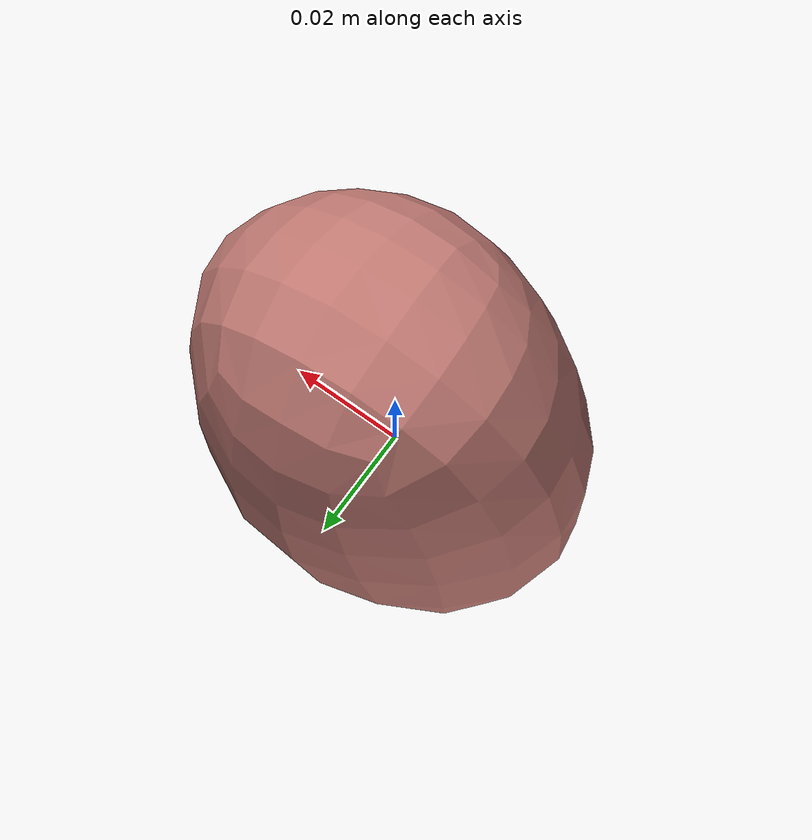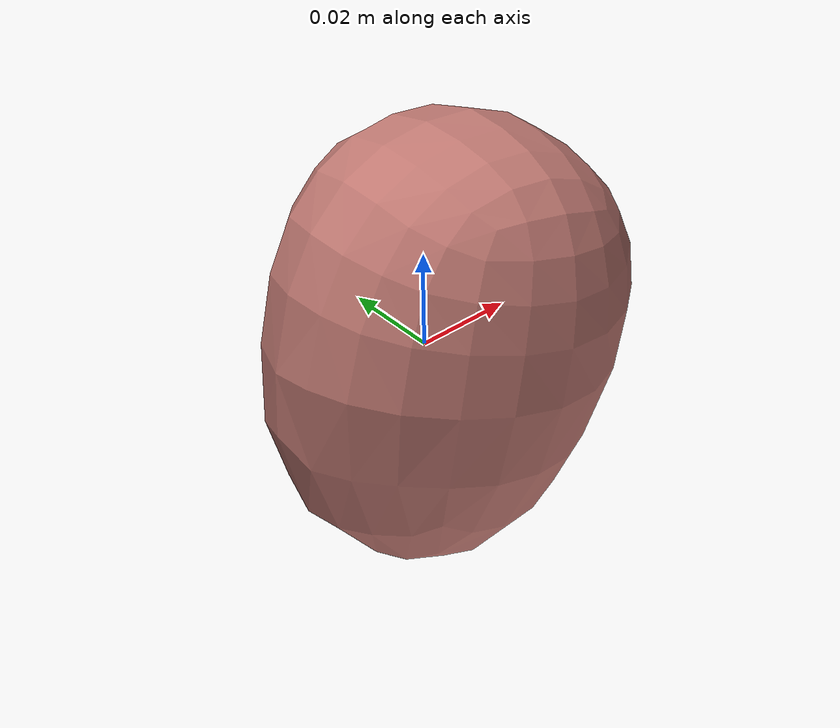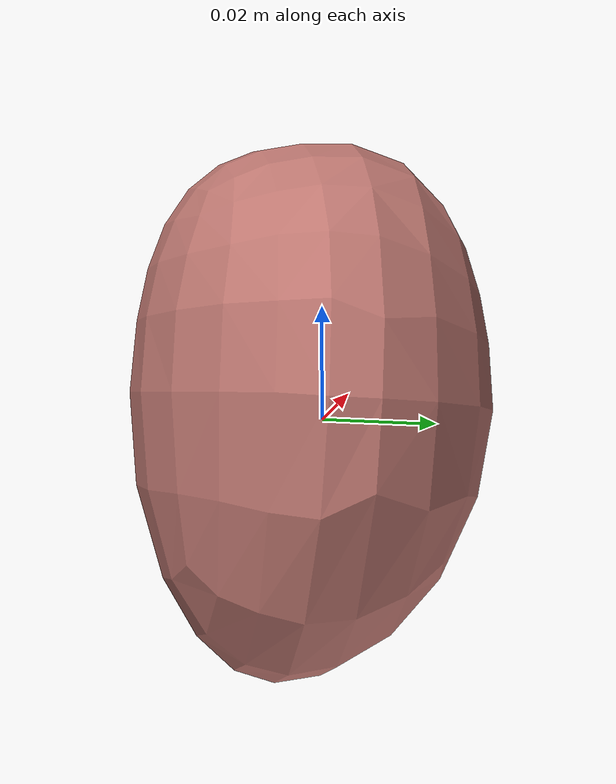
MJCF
<mujoco model="Potato_22">
  <compiler autolimits="true" boundmass="0.01" angle="radian"/>
  <default>
    <default class="/">
      <default class="__VISUAL_MJT__">
        <geom contype="0" conaffinity="0" group="0"/>
      </default>
      <default class="__STRUCTURAL_MJT__">
        <geom contype="8" conaffinity="15" group="4" friction="0.90000000000000002 0.90000000000000002 0.001" solref="0.025000000000000001 1" solimp="0.998 0.998 0.001"/>
      </default>
      <default class="__DYNAMIC_MJT__">
        <geom contype="1" conaffinity="15" group="4" friction="0.90000000000000002 0.90000000000000002 0.001" solref="0.025000000000000001 1" solimp="0.998 0.998 0.001"/>
      </default>
    </default>
  </default>
  <asset>
    <texture name="Potato3_Mat2" type="2d" file="Potato3_AlbedoTransparency.png"/>
    <material name="material_Potato3_Mat2" class="/" texture="Potato3_Mat2" specular="0.5" shininess="0.5" rgba="1 0.65441179999999999 0.65441179999999999 1"/>
    <mesh name="Potato_22_potato_c2" class="/" file="Potato_22_potato_c2/Potato_22_potato_c2.obj" scale="1 1 1"/>
  </asset>
  <worldbody>
    <body name="Potato_22">
      <joint name="Potato_22_free" class="/" type="free" pos="0 0 0" axis="0 0 1" stiffness="0" range="0 0" armature="0" damping="0.10000000000000001" frictionloss="0"/>
      <body name="Potato_22_potato_c2" pos="0.0037461730957031249 -0.0024199877929687499 0.00625367431640625" quat="0.99437254667282104 0 0.10594064742326736 0">
        <geom name="Potato_22_potato_c2" class="__VISUAL_MJT__" type="mesh" material="material_Potato3_Mat2" shellinertia="true" mesh="Potato_22_potato_c2"/>
        <geom name="Potato_22_PrimitiveCollider_0" class="__DYNAMIC_MJT__" type="capsule" size="0.03478303924202919 0.0099252127110958099" rgba="0 1 0 1" pos="0.00095239654183387756 -0.00038399221375584602 -0.0052970638498663902" quat="1.4751396609986736e-06 0.99999999999891198 0 0"/>
      </body>
    </body>
  </worldbody>
</mujoco>
